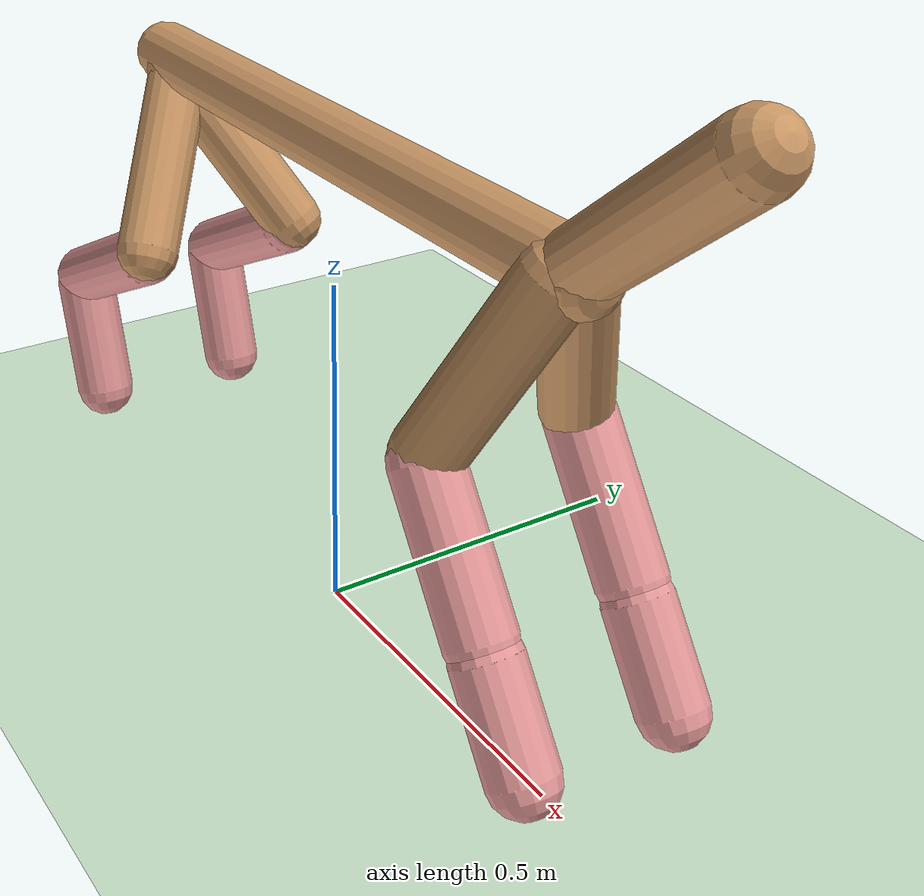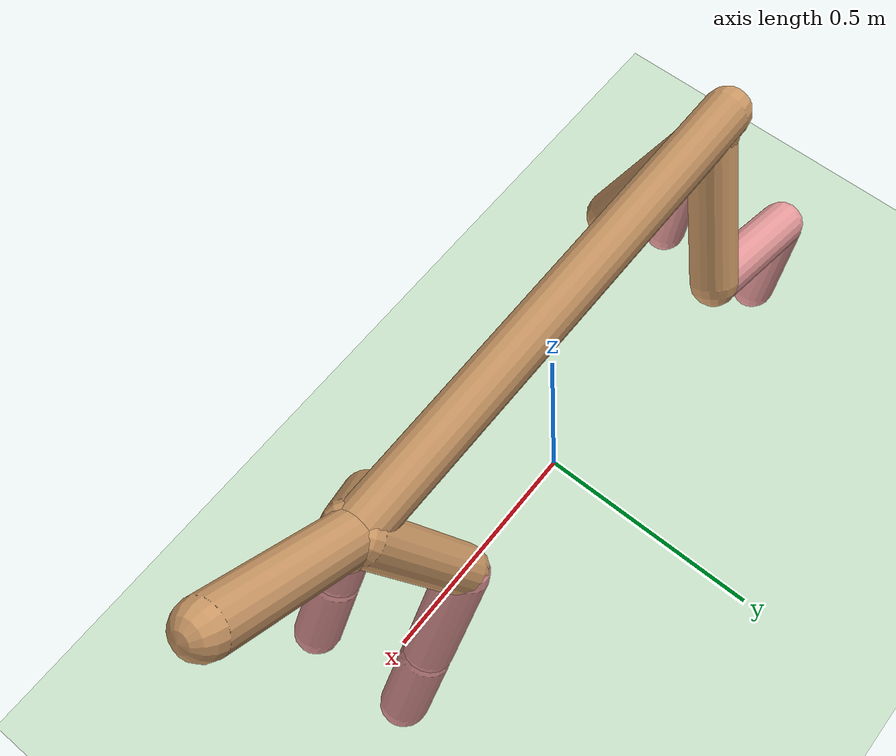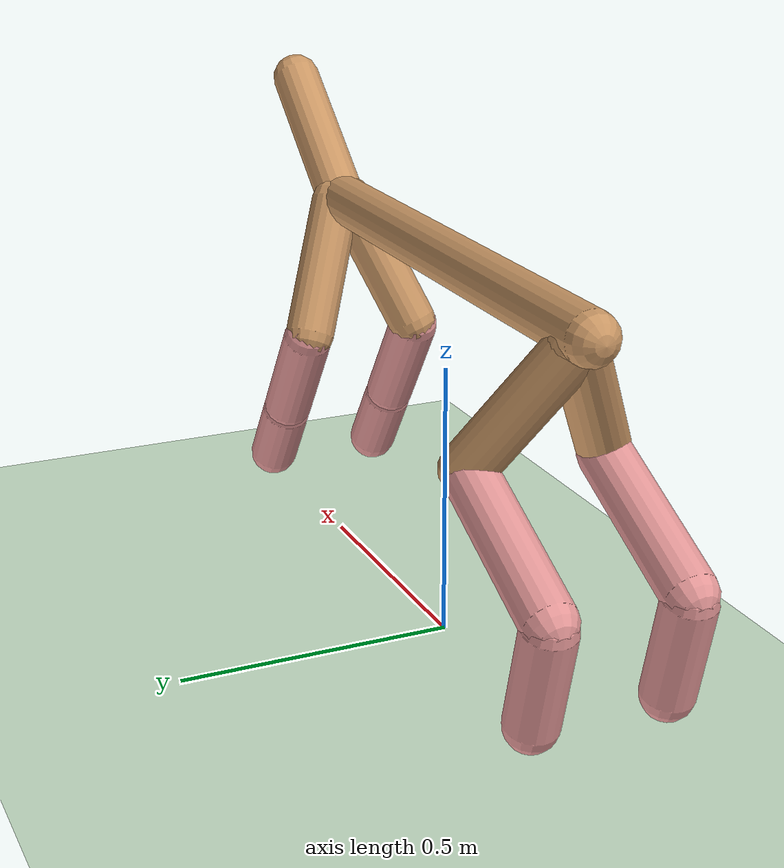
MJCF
<mujoco model="cheetah">
  <compiler angle="radian" coordinate="local" inertiafromgeom="true" settotalmass="14"/>
  <default>
    <joint armature=".1" damping=".01" limited="true" solimplimit="0 .8 .03" solreflimit=".02 1" stiffness="8"/>
    <geom conaffinity="0" condim="3" contype="1" friction=".4 .1 .1" rgba="0.8 0.6 .4 1" solimp="0.0 0.8 0.01" solref="0.02 1"/>
    <motor ctrllimited="true" ctrlrange="-1 1"/>
  </default>
  <size nstack="300000" nuser_geom="1"/>
  <option gravity="0 0 -9.81" timestep="0.01"/>
  <asset>
    <texture builtin="gradient" height="100" rgb1="1 1 1" rgb2="0 0 0" type="skybox" width="100"/>
    <texture builtin="flat" height="1278" mark="cross" markrgb="1 1 1" name="texgeom" random="0.01" rgb1="0.8 0.6 0.4" rgb2="0.8 0.6 0.4" type="cube" width="127"/>
    <texture builtin="checker" height="100" name="texplane" rgb1="0 0 0" rgb2="0.8 0.8 0.8" type="2d" width="100"/>
    <material name="MatPlane" reflectance="0.5" shininess="1" specular="1" texrepeat="60 60" texture="texplane"/>
    <material name="geom" texture="texgeom" texuniform="true"/>
  </asset>
  <worldbody>
    <light cutoff="100" diffuse="1 1 1" dir="-0 0 -1.3" directional="true" exponent="1" pos="0 0 1.3" specular=".1 .1 .1"/>
    <geom conaffinity="1" condim="3" material="MatPlane" name="floor" pos="0 0 0" rgba="0.8 0.9 0.8 1" size="40 40 40" type="plane"/>
    <body name="torso" pos="0 0 .7">
      <camera name="track" mode="trackcom" pos="0 -3 0.3" xyaxes="1 0 0 0 0 1"/>
      <joint armature="0" axis="1 0 0" damping="0" limited="false" name="rootx" pos="0 0 0" stiffness="0" type="slide"/>
      <joint armature="0" axis="0 0 1" damping="0" limited="false" name="rootz" pos="0 0 0" stiffness="0" type="slide"/>
      <joint armature="0" axis="0 1 0" damping="0" limited="false" name="rooty" pos="0 0 0" stiffness="0" type="hinge"/>
      <geom fromto="-.5 0 0 .5 0 0" name="torso" size="0.046" type="capsule"/>
      <geom axisangle="0 1 0 .87" name="head" pos=".6 0 .1" size="0.046 .15" type="capsule"/>
      <body name="bthigh" pos="-.5 -.06 0">
        <joint axis="0 1 0" damping="6" name="bthigh" pos="0 0 0" range="-.52 1.05" stiffness="240" type="hinge"/>
        <geom axisangle="1 1 0 -3.8" name="bthigh" pos=".1 0 -.13" size="0.046 .145" type="capsule"/>
        <body name="bshin" pos=".16 -.06 -.25">
          <joint axis="0 1 0" damping="4.5" name="bshin" pos="0 0 0" range="-.785 .785" stiffness="180" type="hinge"/>
          <geom axisangle="0 1 0 -2.03" name="bshin" pos="-.14 0 -.07" rgba="0.9 0.6 0.6 1" size="0.046 .15" type="capsule"/>
          <body name="bfoot" pos="-.28 0 -.14">
            <joint axis="0 1 0" damping="3" name="bfoot" pos="0 0 0" range="-.4 .785" stiffness="120" type="hinge"/>
            <geom axisangle="0 1 0 -.27" name="bfoot" pos=".03 0 -.097" rgba="0.9 0.6 0.6 1" size="0.046 .094" type="capsule"/>
          </body>
        </body>
      </body>
      <body name="bthigh2" pos="-.5 .06 0">
        <joint axis="0 1 0" damping="6" name="bthigh2" pos="0 0 0" range="-.52 1.05" stiffness="240" type="hinge"/>
        <geom axisangle="1 -1 0 3.8" name="bthigh2" pos=".1 0 -.13" size="0.046 .145" type="capsule"/>
        <body name="bshin2" pos=".16 .06 -.25">
          <joint axis="0 1 0" damping="4.5" name="bshin2" pos="0 0 0" range="-.785 .785" stiffness="180" type="hinge"/>
          <geom axisangle="0 1 0 -2.03" name="bshin2" pos="-.14 0 -.07" rgba="0.9 0.6 0.6 1" size="0.046 .15" type="capsule"/>
          <body name="bfoot2" pos="-.28 0 -.14">
            <joint axis="0 1 0" damping="3" name="bfoot2" pos="0 0 0" range="-.4 .785" stiffness="120" type="hinge"/>
            <geom axisangle="0 1 0 -.27" name="bfoot2" pos=".03 0 -.097" rgba="0.9 0.6 0.6 1" size="0.046 .094" type="capsule"/>
          </body>
        </body>
      </body>
      <body name="fthigh" pos=".5 .06 0">
        <joint axis="0 1 0" damping="4.5" name="fthigh" pos="0 0 0" range="-1 .7" stiffness="180" type="hinge"/>
        <geom axisangle="1 1 0 .52" name="fthigh" pos="-.07 0 -.12" size="0.046 .133" type="capsule"/>
        <body name="fshin" pos="-.12 .05 -.24">
          <joint axis="0 1 0" damping="3" name="fshin" pos="0 0 0" range="-1.2 .87" stiffness="120" type="hinge"/>
          <geom axisangle="0 1 0 -.6" name="fshin" pos=".065 0 -.09" rgba="0.9 0.6 0.6 1" size="0.046 .106" type="capsule"/>
          <body name="ffoot" pos=".13 0 -.18">
            <joint axis="0 1 0" damping="1.5" name="ffoot" pos="0 0 0" range="-.5 .5" stiffness="60" type="hinge"/>
            <geom axisangle="0 1 0 -.6" name="ffoot" pos=".045 0 -.07" rgba="0.9 0.6 0.6 1" size="0.046 .07" type="capsule"/>
          </body>
        </body>
      </body>
      <body name="fthigh2" pos=".5 -.06 0">
        <joint axis="0 1 0" damping="4.5" name="fthigh2" pos="0 0 0" range="-1 .7" stiffness="180" type="hinge"/>
        <geom axisangle="1 -1 0 -.52" name="fthigh2" pos="-.07 0 -.12" size="0.046 .133" type="capsule"/>
        <body name="fshin2" pos="-.12 -.05 -.24">
          <joint axis="0 1 0" damping="3" name="fshin2" pos="0 0 0" range="-1.2 .87" stiffness="120" type="hinge"/>
          <geom axisangle="0 -1 0 .6" name="fshin2" pos=".065 0 -.09" rgba="0.9 0.6 0.6 1" size="0.046 .106" type="capsule"/>
          <body name="ffoot2" pos=".13 0 -.18">
            <joint axis="0 1 0" damping="1.5" name="ffoot2" pos="0 0 0" range="-.5 .5" stiffness="60" type="hinge"/>
            <geom axisangle="0 1 0 -.6" name="ffoot2" pos=".045 0 -.07" rgba="0.9 0.6 0.6 1" size="0.046 .07" type="capsule"/>
          </body>
        </body>
      </body>
    </body>
  </worldbody>
  <actuator>
    <motor gear="120" joint="bthigh" name="bthigh"/>
    <motor gear="90" joint="bshin" name="bshin"/>
    <motor gear="60" joint="bfoot" name="bfoot"/>
    <motor gear="120" joint="fthigh" name="fthigh"/>
    <motor gear="60" joint="fshin" name="fshin"/>
    <motor gear="30" joint="ffoot" name="ffoot"/>
    <motor gear="120" joint="bthigh2" name="bthigh2"/>
    <motor gear="90" joint="bshin2" name="bshin2"/>
    <motor gear="60" joint="bfoot2" name="bfoot2"/>
    <motor gear="120" joint="fthigh2" name="fthigh2"/>
    <motor gear="60" joint="fshin2" name="fshin2"/>
    <motor gear="30" joint="ffoot2" name="ffoot2"/>
  </actuator>
</mujoco>
